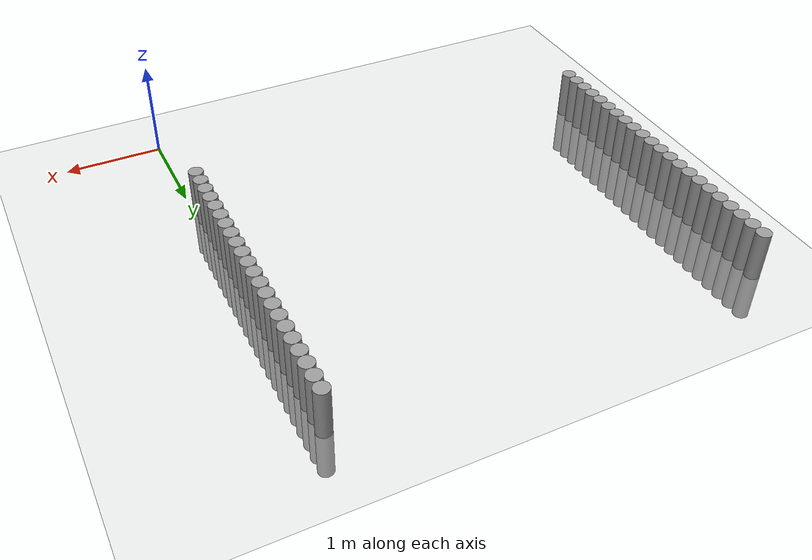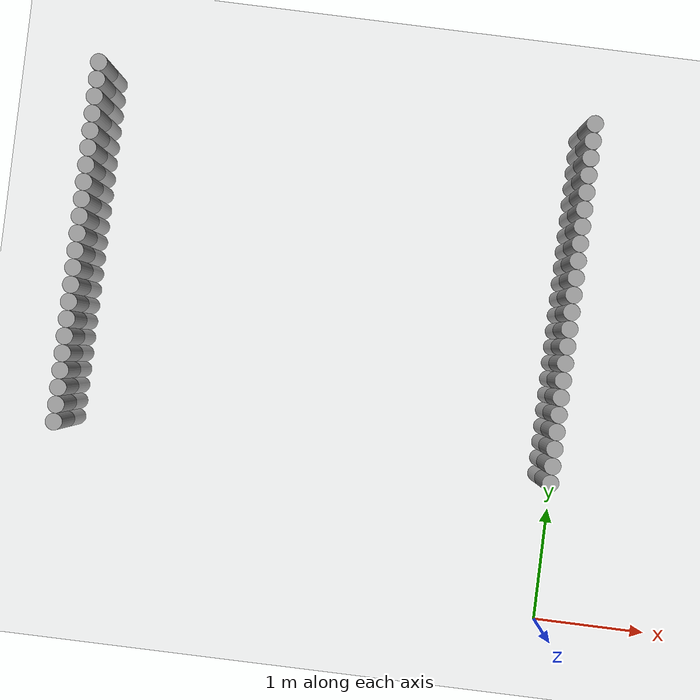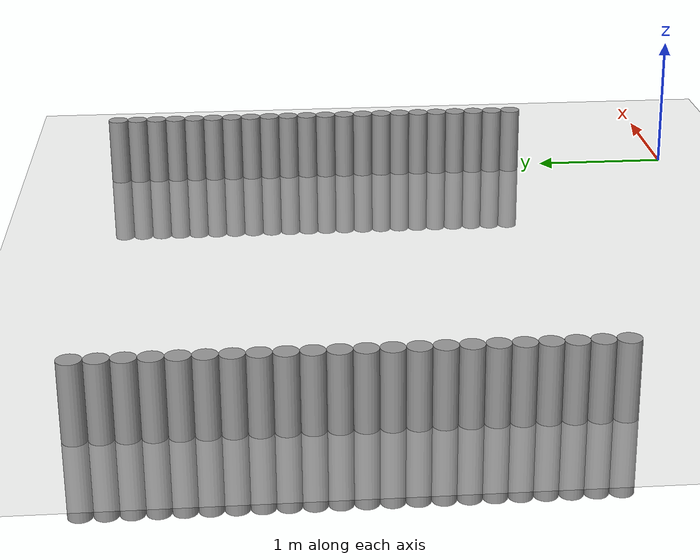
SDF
<sdf version="1.6">
 <world name="default">
  <model name="ground_plane">
   <static>1</static>
   <link name="link">
    <collision name="collision">
     <geometry><plane><normal>0 0 1</normal><size>100 100</size></plane></geometry>
     <surface><friction><ode><mu>100</mu><mu2>50</mu2></ode></friction></surface>
    </collision>
    <visual name="visual">
     <cast_shadows>0</cast_shadows>
     <geometry><plane><normal>0 0 1</normal><size>100 100</size></plane></geometry>
     <material>
      <script><uri>file://media/materials/scripts/gazebo.material</uri><name>Gazebo/Grey</name></script>
     </material>
    </visual>
   </link>
  </model>
  <model name="unit_cylinder_44">
   <pose>-0.075000 1.275000 0.000000 0.000000 0.000000 0.000000</pose>
   <link name="link">
    <inertial>
     <mass>1</mass>
     <inertia><ixx>0.145833</ixx><ixy>0</ixy><ixz>0</ixz><iyy>0.145833</iyy><iyz>0</iyz><izz>0.125</izz></inertia>
    </inertial>
    <collision name="collision">
     <geometry><cylinder><radius>0.075000</radius><length>1</length></cylinder></geometry>
    </collision>
    <visual name="visual">
     <geometry><cylinder><radius>0.075000</radius><length>1</length></cylinder></geometry>
     <material>
      <script><name>Gazebo/Grey</name><uri>file://media/materials/scripts/gazebo.material</uri></script>
     </material>
    </visual>
   </link>
  </model>
  <model name="unit_cylinder_45">
   <pose>-4.425000 1.275000 0.000000 0.000000 0.000000 0.000000</pose>
   <link name="link">
    <inertial>
     <mass>1</mass>
     <inertia><ixx>0.145833</ixx><ixy>0</ixy><ixz>0</ixz><iyy>0.145833</iyy><iyz>0</iyz><izz>0.125</izz></inertia>
    </inertial>
    <collision name="collision">
     <geometry><cylinder><radius>0.075000</radius><length>1</length></cylinder></geometry>
    </collision>
    <visual name="visual">
     <geometry><cylinder><radius>0.075000</radius><length>1</length></cylinder></geometry>
     <material>
      <script><name>Gazebo/Grey</name><uri>file://media/materials/scripts/gazebo.material</uri></script>
     </material>
    </visual>
   </link>
  </model>
  <model name="unit_cylinder_46">
   <pose>-0.075000 1.425000 0.000000 0.000000 0.000000 0.000000</pose>
   <link name="link">
    <inertial>
     <mass>1</mass>
     <inertia><ixx>0.145833</ixx><ixy>0</ixy><ixz>0</ixz><iyy>0.145833</iyy><iyz>0</iyz><izz>0.125</izz></inertia>
    </inertial>
    <collision name="collision">
     <geometry><cylinder><radius>0.075000</radius><length>1</length></cylinder></geometry>
    </collision>
    <visual name="visual">
     <geometry><cylinder><radius>0.075000</radius><length>1</length></cylinder></geometry>
     <material>
      <script><name>Gazebo/Grey</name><uri>file://media/materials/scripts/gazebo.material</uri></script>
     </material>
    </visual>
   </link>
  </model>
  <model name="unit_cylinder_47">
   <pose>-4.425000 1.425000 0.000000 0.000000 0.000000 0.000000</pose>
   <link name="link">
    <inertial>
     <mass>1</mass>
     <inertia><ixx>0.145833</ixx><ixy>0</ixy><ixz>0</ixz><iyy>0.145833</iyy><iyz>0</iyz><izz>0.125</izz></inertia>
    </inertial>
    <collision name="collision">
     <geometry><cylinder><radius>0.075000</radius><length>1</length></cylinder></geometry>
    </collision>
    <visual name="visual">
     <geometry><cylinder><radius>0.075000</radius><length>1</length></cylinder></geometry>
     <material>
      <script><name>Gazebo/Grey</name><uri>file://media/materials/scripts/gazebo.material</uri></script>
     </material>
    </visual>
   </link>
  </model>
  <model name="unit_cylinder_48">
   <pose>-0.075000 1.575000 0.000000 0.000000 0.000000 0.000000</pose>
   <link name="link">
    <inertial>
     <mass>1</mass>
     <inertia><ixx>0.145833</ixx><ixy>0</ixy><ixz>0</ixz><iyy>0.145833</iyy><iyz>0</iyz><izz>0.125</izz></inertia>
    </inertial>
    <collision name="collision">
     <geometry><cylinder><radius>0.075000</radius><length>1</length></cylinder></geometry>
    </collision>
    <visual name="visual">
     <geometry><cylinder><radius>0.075000</radius><length>1</length></cylinder></geometry>
     <material>
      <script><name>Gazebo/Grey</name><uri>file://media/materials/scripts/gazebo.material</uri></script>
     </material>
    </visual>
   </link>
  </model>
  <model name="unit_cylinder_49">
   <pose>-4.425000 1.575000 0.000000 0.000000 0.000000 0.000000</pose>
   <link name="link">
    <inertial>
     <mass>1</mass>
     <inertia><ixx>0.145833</ixx><ixy>0</ixy><ixz>0</ixz><iyy>0.145833</iyy><iyz>0</iyz><izz>0.125</izz></inertia>
    </inertial>
    <collision name="collision">
     <geometry><cylinder><radius>0.075000</radius><length>1</length></cylinder></geometry>
    </collision>
    <visual name="visual">
     <geometry><cylinder><radius>0.075000</radius><length>1</length></cylinder></geometry>
     <material>
      <script><name>Gazebo/Grey</name><uri>file://media/materials/scripts/gazebo.material</uri></script>
     </material>
    </visual>
   </link>
  </model>
  <model name="unit_cylinder_50">
   <pose>-0.075000 1.725000 0.000000 0.000000 0.000000 0.000000</pose>
   <link name="link">
    <inertial>
     <mass>1</mass>
     <inertia><ixx>0.145833</ixx><ixy>0</ixy><ixz>0</ixz><iyy>0.145833</iyy><iyz>0</iyz><izz>0.125</izz></inertia>
    </inertial>
    <collision name="collision">
     <geometry><cylinder><radius>0.075000</radius><length>1</length></cylinder></geometry>
    </collision>
    <visual name="visual">
     <geometry><cylinder><radius>0.075000</radius><length>1</length></cylinder></geometry>
     <material>
      <script><name>Gazebo/Grey</name><uri>file://media/materials/scripts/gazebo.material</uri></script>
     </material>
    </visual>
   </link>
  </model>
  <model name="unit_cylinder_51">
   <pose>-4.425000 1.725000 0.000000 0.000000 0.000000 0.000000</pose>
   <link name="link">
    <inertial>
     <mass>1</mass>
     <inertia><ixx>0.145833</ixx><ixy>0</ixy><ixz>0</ixz><iyy>0.145833</iyy><iyz>0</iyz><izz>0.125</izz></inertia>
    </inertial>
    <collision name="collision">
     <geometry><cylinder><radius>0.075000</radius><length>1</length></cylinder></geometry>
    </collision>
    <visual name="visual">
     <geometry><cylinder><radius>0.075000</radius><length>1</length></cylinder></geometry>
     <material>
      <script><name>Gazebo/Grey</name><uri>file://media/materials/scripts/gazebo.material</uri></script>
     </material>
    </visual>
   </link>
  </model>
  <model name="unit_cylinder_52">
   <pose>-0.075000 1.875000 0.000000 0.000000 0.000000 0.000000</pose>
   <link name="link">
    <inertial>
     <mass>1</mass>
     <inertia><ixx>0.145833</ixx><ixy>0</ixy><ixz>0</ixz><iyy>0.145833</iyy><iyz>0</iyz><izz>0.125</izz></inertia>
    </inertial>
    <collision name="collision">
     <geometry><cylinder><radius>0.075000</radius><length>1</length></cylinder></geometry>
    </collision>
    <visual name="visual">
     <geometry><cylinder><radius>0.075000</radius><length>1</length></cylinder></geometry>
     <material>
      <script><name>Gazebo/Grey</name><uri>file://media/materials/scripts/gazebo.material</uri></script>
     </material>
    </visual>
   </link>
  </model>
  <model name="unit_cylinder_53">
   <pose>-4.425000 1.875000 0.000000 0.000000 0.000000 0.000000</pose>
   <link name="link">
    <inertial>
     <mass>1</mass>
     <inertia><ixx>0.145833</ixx><ixy>0</ixy><ixz>0</ixz><iyy>0.145833</iyy><iyz>0</iyz><izz>0.125</izz></inertia>
    </inertial>
    <collision name="collision">
     <geometry><cylinder><radius>0.075000</radius><length>1</length></cylinder></geometry>
    </collision>
    <visual name="visual">
     <geometry><cylinder><radius>0.075000</radius><length>1</length></cylinder></geometry>
     <material>
      <script><name>Gazebo/Grey</name><uri>file://media/materials/scripts/gazebo.material</uri></script>
     </material>
    </visual>
   </link>
  </model>
  <model name="unit_cylinder_54">
   <pose>-0.075000 2.025000 0.000000 0.000000 0.000000 0.000000</pose>
   <link name="link">
    <inertial>
     <mass>1</mass>
     <inertia><ixx>0.145833</ixx><ixy>0</ixy><ixz>0</ixz><iyy>0.145833</iyy><iyz>0</iyz><izz>0.125</izz></inertia>
    </inertial>
    <collision name="collision">
     <geometry><cylinder><radius>0.075000</radius><length>1</length></cylinder></geometry>
    </collision>
    <visual name="visual">
     <geometry><cylinder><radius>0.075000</radius><length>1</length></cylinder></geometry>
     <material>
      <script><name>Gazebo/Grey</name><uri>file://media/materials/scripts/gazebo.material</uri></script>
     </material>
    </visual>
   </link>
  </model>
  <model name="unit_cylinder_55">
   <pose>-4.425000 2.025000 0.000000 0.000000 0.000000 0.000000</pose>
   <link name="link">
    <inertial>
     <mass>1</mass>
     <inertia><ixx>0.145833</ixx><ixy>0</ixy><ixz>0</ixz><iyy>0.145833</iyy><iyz>0</iyz><izz>0.125</izz></inertia>
    </inertial>
    <collision name="collision">
     <geometry><cylinder><radius>0.075000</radius><length>1</length></cylinder></geometry>
    </collision>
    <visual name="visual">
     <geometry><cylinder><radius>0.075000</radius><length>1</length></cylinder></geometry>
     <material>
      <script><name>Gazebo/Grey</name><uri>file://media/materials/scripts/gazebo.material</uri></script>
     </material>
    </visual>
   </link>
  </model>
  <model name="unit_cylinder_56">
   <pose>-0.075000 2.175000 0.000000 0.000000 0.000000 0.000000</pose>
   <link name="link">
    <inertial>
     <mass>1</mass>
     <inertia><ixx>0.145833</ixx><ixy>0</ixy><ixz>0</ixz><iyy>0.145833</iyy><iyz>0</iyz><izz>0.125</izz></inertia>
    </inertial>
    <collision name="collision">
     <geometry><cylinder><radius>0.075000</radius><length>1</length></cylinder></geometry>
    </collision>
    <visual name="visual">
     <geometry><cylinder><radius>0.075000</radius><length>1</length></cylinder></geometry>
     <material>
      <script><name>Gazebo/Grey</name><uri>file://media/materials/scripts/gazebo.material</uri></script>
     </material>
    </visual>
   </link>
  </model>
  <model name="unit_cylinder_57">
   <pose>-4.425000 2.175000 0.000000 0.000000 0.000000 0.000000</pose>
   <link name="link">
    <inertial>
     <mass>1</mass>
     <inertia><ixx>0.145833</ixx><ixy>0</ixy><ixz>0</ixz><iyy>0.145833</iyy><iyz>0</iyz><izz>0.125</izz></inertia>
    </inertial>
    <collision name="collision">
     <geometry><cylinder><radius>0.075000</radius><length>1</length></cylinder></geometry>
    </collision>
    <visual name="visual">
     <geometry><cylinder><radius>0.075000</radius><length>1</length></cylinder></geometry>
     <material>
      <script><name>Gazebo/Grey</name><uri>file://media/materials/scripts/gazebo.material</uri></script>
     </material>
    </visual>
   </link>
  </model>
  <model name="unit_cylinder_58">
   <pose>-0.075000 2.325000 0.000000 0.000000 0.000000 0.000000</pose>
   <link name="link">
    <inertial>
     <mass>1</mass>
     <inertia><ixx>0.145833</ixx><ixy>0</ixy><ixz>0</ixz><iyy>0.145833</iyy><iyz>0</iyz><izz>0.125</izz></inertia>
    </inertial>
    <collision name="collision">
     <geometry><cylinder><radius>0.075000</radius><length>1</length></cylinder></geometry>
    </collision>
    <visual name="visual">
     <geometry><cylinder><radius>0.075000</radius><length>1</length></cylinder></geometry>
     <material>
      <script><name>Gazebo/Grey</name><uri>file://media/materials/scripts/gazebo.material</uri></script>
     </material>
    </visual>
   </link>
  </model>
  <model name="unit_cylinder_59">
   <pose>-4.425000 2.325000 0.000000 0.000000 0.000000 0.000000</pose>
   <link name="link">
    <inertial>
     <mass>1</mass>
     <inertia><ixx>0.145833</ixx><ixy>0</ixy><ixz>0</ixz><iyy>0.145833</iyy><iyz>0</iyz><izz>0.125</izz></inertia>
    </inertial>
    <collision name="collision">
     <geometry><cylinder><radius>0.075000</radius><length>1</length></cylinder></geometry>
    </collision>
    <visual name="visual">
     <geometry><cylinder><radius>0.075000</radius><length>1</length></cylinder></geometry>
     <material>
      <script><name>Gazebo/Grey</name><uri>file://media/materials/scripts/gazebo.material</uri></script>
     </material>
    </visual>
   </link>
  </model>
  <model name="unit_cylinder_60">
   <pose>-0.075000 2.475000 0.000000 0.000000 0.000000 0.000000</pose>
   <link name="link">
    <inertial>
     <mass>1</mass>
     <inertia><ixx>0.145833</ixx><ixy>0</ixy><ixz>0</ixz><iyy>0.145833</iyy><iyz>0</iyz><izz>0.125</izz></inertia>
    </inertial>
    <collision name="collision">
     <geometry><cylinder><radius>0.075000</radius><length>1</length></cylinder></geometry>
    </collision>
    <visual name="visual">
     <geometry><cylinder><radius>0.075000</radius><length>1</length></cylinder></geometry>
     <material>
      <script><name>Gazebo/Grey</name><uri>file://media/materials/scripts/gazebo.material</uri></script>
     </material>
    </visual>
   </link>
  </model>
  <model name="unit_cylinder_61">
   <pose>-4.425000 2.475000 0.000000 0.000000 0.000000 0.000000</pose>
   <link name="link">
    <inertial>
     <mass>1</mass>
     <inertia><ixx>0.145833</ixx><ixy>0</ixy><ixz>0</ixz><iyy>0.145833</iyy><iyz>0</iyz><izz>0.125</izz></inertia>
    </inertial>
    <collision name="collision">
     <geometry><cylinder><radius>0.075000</radius><length>1</length></cylinder></geometry>
    </collision>
    <visual name="visual">
     <geometry><cylinder><radius>0.075000</radius><length>1</length></cylinder></geometry>
     <material>
      <script><name>Gazebo/Grey</name><uri>file://media/materials/scripts/gazebo.material</uri></script>
     </material>
    </visual>
   </link>
  </model>
  <model name="unit_cylinder_62">
   <pose>-0.075000 2.625000 0.000000 0.000000 0.000000 0.000000</pose>
   <link name="link">
    <inertial>
     <mass>1</mass>
     <inertia><ixx>0.145833</ixx><ixy>0</ixy><ixz>0</ixz><iyy>0.145833</iyy><iyz>0</iyz><izz>0.125</izz></inertia>
    </inertial>
    <collision name="collision">
     <geometry><cylinder><radius>0.075000</radius><length>1</length></cylinder></geometry>
    </collision>
    <visual name="visual">
     <geometry><cylinder><radius>0.075000</radius><length>1</length></cylinder></geometry>
     <material>
      <script><name>Gazebo/Grey</name><uri>file://media/materials/scripts/gazebo.material</uri></script>
     </material>
    </visual>
   </link>
  </model>
  <model name="unit_cylinder_63">
   <pose>-4.425000 2.625000 0.000000 0.000000 0.000000 0.000000</pose>
   <link name="link">
    <inertial>
     <mass>1</mass>
     <inertia><ixx>0.145833</ixx><ixy>0</ixy><ixz>0</ixz><iyy>0.145833</iyy><iyz>0</iyz><izz>0.125</izz></inertia>
    </inertial>
    <collision name="collision">
     <geometry><cylinder><radius>0.075000</radius><length>1</length></cylinder></geometry>
    </collision>
    <visual name="visual">
     <geometry><cylinder><radius>0.075000</radius><length>1</length></cylinder></geometry>
     <material>
      <script><name>Gazebo/Grey</name><uri>file://media/materials/scripts/gazebo.material</uri></script>
     </material>
    </visual>
   </link>
  </model>
  <model name="unit_cylinder_64">
   <pose>-0.075000 2.775000 0.000000 0.000000 0.000000 0.000000</pose>
   <link name="link">
    <inertial>
     <mass>1</mass>
     <inertia><ixx>0.145833</ixx><ixy>0</ixy><ixz>0</ixz><iyy>0.145833</iyy><iyz>0</iyz><izz>0.125</izz></inertia>
    </inertial>
    <collision name="collision">
     <geometry><cylinder><radius>0.075000</radius><length>1</length></cylinder></geometry>
    </collision>
    <visual name="visual">
     <geometry><cylinder><radius>0.075000</radius><length>1</length></cylinder></geometry>
     <material>
      <script><name>Gazebo/Grey</name><uri>file://media/materials/scripts/gazebo.material</uri></script>
     </material>
    </visual>
   </link>
  </model>
  <model name="unit_cylinder_65">
   <pose>-4.425000 2.775000 0.000000 0.000000 0.000000 0.000000</pose>
   <link name="link">
    <inertial>
     <mass>1</mass>
     <inertia><ixx>0.145833</ixx><ixy>0</ixy><ixz>0</ixz><iyy>0.145833</iyy><iyz>0</iyz><izz>0.125</izz></inertia>
    </inertial>
    <collision name="collision">
     <geometry><cylinder><radius>0.075000</radius><length>1</length></cylinder></geometry>
    </collision>
    <visual name="visual">
     <geometry><cylinder><radius>0.075000</radius><length>1</length></cylinder></geometry>
     <material>
      <script><name>Gazebo/Grey</name><uri>file://media/materials/scripts/gazebo.material</uri></script>
     </material>
    </visual>
   </link>
  </model>
  <model name="unit_cylinder_66">
   <pose>-0.075000 2.925000 0.000000 0.000000 0.000000 0.000000</pose>
   <link name="link">
    <inertial>
     <mass>1</mass>
     <inertia><ixx>0.145833</ixx><ixy>0</ixy><ixz>0</ixz><iyy>0.145833</iyy><iyz>0</iyz><izz>0.125</izz></inertia>
    </inertial>
    <collision name="collision">
     <geometry><cylinder><radius>0.075000</radius><length>1</length></cylinder></geometry>
    </collision>
    <visual name="visual">
     <geometry><cylinder><radius>0.075000</radius><length>1</length></cylinder></geometry>
     <material>
      <script><name>Gazebo/Grey</name><uri>file://media/materials/scripts/gazebo.material</uri></script>
     </material>
    </visual>
   </link>
  </model>
  <model name="unit_cylinder_67">
   <pose>-4.425000 2.925000 0.000000 0.000000 0.000000 0.000000</pose>
   <link name="link">
    <inertial>
     <mass>1</mass>
     <inertia><ixx>0.145833</ixx><ixy>0</ixy><ixz>0</ixz><iyy>0.145833</iyy><iyz>0</iyz><izz>0.125</izz></inertia>
    </inertial>
    <collision name="collision">
     <geometry><cylinder><radius>0.075000</radius><length>1</length></cylinder></geometry>
    </collision>
    <visual name="visual">
     <geometry><cylinder><radius>0.075000</radius><length>1</length></cylinder></geometry>
     <material>
      <script><name>Gazebo/Grey</name><uri>file://media/materials/scripts/gazebo.material</uri></script>
     </material>
    </visual>
   </link>
  </model>
  <model name="unit_cylinder_68">
   <pose>-0.075000 3.075000 0.000000 0.000000 0.000000 0.000000</pose>
   <link name="link">
    <inertial>
     <mass>1</mass>
     <inertia><ixx>0.145833</ixx><ixy>0</ixy><ixz>0</ixz><iyy>0.145833</iyy><iyz>0</iyz><izz>0.125</izz></inertia>
    </inertial>
    <collision name="collision">
     <geometry><cylinder><radius>0.075000</radius><length>1</length></cylinder></geometry>
    </collision>
    <visual name="visual">
     <geometry><cylinder><radius>0.075000</radius><length>1</length></cylinder></geometry>
     <material>
      <script><name>Gazebo/Grey</name><uri>file://media/materials/scripts/gazebo.material</uri></script>
     </material>
    </visual>
   </link>
  </model>
  <model name="unit_cylinder_69">
   <pose>-4.425000 3.075000 0.000000 0.000000 0.000000 0.000000</pose>
   <link name="link">
    <inertial>
     <mass>1</mass>
     <inertia><ixx>0.145833</ixx><ixy>0</ixy><ixz>0</ixz><iyy>0.145833</iyy><iyz>0</iyz><izz>0.125</izz></inertia>
    </inertial>
    <collision name="collision">
     <geometry><cylinder><radius>0.075000</radius><length>1</length></cylinder></geometry>
    </collision>
    <visual name="visual">
     <geometry><cylinder><radius>0.075000</radius><length>1</length></cylinder></geometry>
     <material>
      <script><name>Gazebo/Grey</name><uri>file://media/materials/scripts/gazebo.material</uri></script>
     </material>
    </visual>
   </link>
  </model>
  <model name="unit_cylinder_70">
   <pose>-0.075000 3.225000 0.000000 0.000000 0.000000 0.000000</pose>
   <link name="link">
    <inertial>
     <mass>1</mass>
     <inertia><ixx>0.145833</ixx><ixy>0</ixy><ixz>0</ixz><iyy>0.145833</iyy><iyz>0</iyz><izz>0.125</izz></inertia>
    </inertial>
    <collision name="collision">
     <geometry><cylinder><radius>0.075000</radius><length>1</length></cylinder></geometry>
    </collision>
    <visual name="visual">
     <geometry><cylinder><radius>0.075000</radius><length>1</length></cylinder></geometry>
     <material>
      <script><name>Gazebo/Grey</name><uri>file://media/materials/scripts/gazebo.material</uri></script>
     </material>
    </visual>
   </link>
  </model>
  <model name="unit_cylinder_71">
   <pose>-4.425000 3.225000 0.000000 0.000000 0.000000 0.000000</pose>
   <link name="link">
    <inertial>
     <mass>1</mass>
     <inertia><ixx>0.145833</ixx><ixy>0</ixy><ixz>0</ixz><iyy>0.145833</iyy><iyz>0</iyz><izz>0.125</izz></inertia>
    </inertial>
    <collision name="collision">
     <geometry><cylinder><radius>0.075000</radius><length>1</length></cylinder></geometry>
    </collision>
    <visual name="visual">
     <geometry><cylinder><radius>0.075000</radius><length>1</length></cylinder></geometry>
     <material>
      <script><name>Gazebo/Grey</name><uri>file://media/materials/scripts/gazebo.material</uri></script>
     </material>
    </visual>
   </link>
  </model>
  <model name="unit_cylinder_72">
   <pose>-0.075000 3.375000 0.000000 0.000000 0.000000 0.000000</pose>
   <link name="link">
    <inertial>
     <mass>1</mass>
     <inertia><ixx>0.145833</ixx><ixy>0</ixy><ixz>0</ixz><iyy>0.145833</iyy><iyz>0</iyz><izz>0.125</izz></inertia>
    </inertial>
    <collision name="collision">
     <geometry><cylinder><radius>0.075000</radius><length>1</length></cylinder></geometry>
    </collision>
    <visual name="visual">
     <geometry><cylinder><radius>0.075000</radius><length>1</length></cylinder></geometry>
     <material>
      <script><name>Gazebo/Grey</name><uri>file://media/materials/scripts/gazebo.material</uri></script>
     </material>
    </visual>
   </link>
  </model>
  <model name="unit_cylinder_73">
   <pose>-4.425000 3.375000 0.000000 0.000000 0.000000 0.000000</pose>
   <link name="link">
    <inertial>
     <mass>1</mass>
     <inertia><ixx>0.145833</ixx><ixy>0</ixy><ixz>0</ixz><iyy>0.145833</iyy><iyz>0</iyz><izz>0.125</izz></inertia>
    </inertial>
    <collision name="collision">
     <geometry><cylinder><radius>0.075000</radius><length>1</length></cylinder></geometry>
    </collision>
    <visual name="visual">
     <geometry><cylinder><radius>0.075000</radius><length>1</length></cylinder></geometry>
     <material>
      <script><name>Gazebo/Grey</name><uri>file://media/materials/scripts/gazebo.material</uri></script>
     </material>
    </visual>
   </link>
  </model>
  <model name="unit_cylinder_74">
   <pose>-0.075000 3.525000 0.000000 0.000000 0.000000 0.000000</pose>
   <link name="link">
    <inertial>
     <mass>1</mass>
     <inertia><ixx>0.145833</ixx><ixy>0</ixy><ixz>0</ixz><iyy>0.145833</iyy><iyz>0</iyz><izz>0.125</izz></inertia>
    </inertial>
    <collision name="collision">
     <geometry><cylinder><radius>0.075000</radius><length>1</length></cylinder></geometry>
    </collision>
    <visual name="visual">
     <geometry><cylinder><radius>0.075000</radius><length>1</length></cylinder></geometry>
     <material>
      <script><name>Gazebo/Grey</name><uri>file://media/materials/scripts/gazebo.material</uri></script>
     </material>
    </visual>
   </link>
  </model>
  <model name="unit_cylinder_75">
   <pose>-4.425000 3.525000 0.000000 0.000000 0.000000 0.000000</pose>
   <link name="link">
    <inertial>
     <mass>1</mass>
     <inertia><ixx>0.145833</ixx><ixy>0</ixy><ixz>0</ixz><iyy>0.145833</iyy><iyz>0</iyz><izz>0.125</izz></inertia>
    </inertial>
    <collision name="collision">
     <geometry><cylinder><radius>0.075000</radius><length>1</length></cylinder></geometry>
    </collision>
    <visual name="visual">
     <geometry><cylinder><radius>0.075000</radius><length>1</length></cylinder></geometry>
     <material>
      <script><name>Gazebo/Grey</name><uri>file://media/materials/scripts/gazebo.material</uri></script>
     </material>
    </visual>
   </link>
  </model>
  <model name="unit_cylinder_76">
   <pose>-0.075000 3.675000 0.000000 0.000000 0.000000 0.000000</pose>
   <link name="link">
    <inertial>
     <mass>1</mass>
     <inertia><ixx>0.145833</ixx><ixy>0</ixy><ixz>0</ixz><iyy>0.145833</iyy><iyz>0</iyz><izz>0.125</izz></inertia>
    </inertial>
    <collision name="collision">
     <geometry><cylinder><radius>0.075000</radius><length>1</length></cylinder></geometry>
    </collision>
    <visual name="visual">
     <geometry><cylinder><radius>0.075000</radius><length>1</length></cylinder></geometry>
     <material>
      <script><name>Gazebo/Grey</name><uri>file://media/materials/scripts/gazebo.material</uri></script>
     </material>
    </visual>
   </link>
  </model>
  <model name="unit_cylinder_77">
   <pose>-4.425000 3.675000 0.000000 0.000000 0.000000 0.000000</pose>
   <link name="link">
    <inertial>
     <mass>1</mass>
     <inertia><ixx>0.145833</ixx><ixy>0</ixy><ixz>0</ixz><iyy>0.145833</iyy><iyz>0</iyz><izz>0.125</izz></inertia>
    </inertial>
    <collision name="collision">
     <geometry><cylinder><radius>0.075000</radius><length>1</length></cylinder></geometry>
    </collision>
    <visual name="visual">
     <geometry><cylinder><radius>0.075000</radius><length>1</length></cylinder></geometry>
     <material>
      <script><name>Gazebo/Grey</name><uri>file://media/materials/scripts/gazebo.material</uri></script>
     </material>
    </visual>
   </link>
  </model>
  <model name="unit_cylinder_78">
   <pose>-0.075000 3.825000 0.000000 0.000000 0.000000 0.000000</pose>
   <link name="link">
    <inertial>
     <mass>1</mass>
     <inertia><ixx>0.145833</ixx><ixy>0</ixy><ixz>0</ixz><iyy>0.145833</iyy><iyz>0</iyz><izz>0.125</izz></inertia>
    </inertial>
    <collision name="collision">
     <geometry><cylinder><radius>0.075000</radius><length>1</length></cylinder></geometry>
    </collision>
    <visual name="visual">
     <geometry><cylinder><radius>0.075000</radius><length>1</length></cylinder></geometry>
     <material>
      <script><name>Gazebo/Grey</name><uri>file://media/materials/scripts/gazebo.material</uri></script>
     </material>
    </visual>
   </link>
  </model>
  <model name="unit_cylinder_79">
   <pose>-4.425000 3.825000 0.000000 0.000000 0.000000 0.000000</pose>
   <link name="link">
    <inertial>
     <mass>1</mass>
     <inertia><ixx>0.145833</ixx><ixy>0</ixy><ixz>0</ixz><iyy>0.145833</iyy><iyz>0</iyz><izz>0.125</izz></inertia>
    </inertial>
    <collision name="collision">
     <geometry><cylinder><radius>0.075000</radius><length>1</length></cylinder></geometry>
    </collision>
    <visual name="visual">
     <geometry><cylinder><radius>0.075000</radius><length>1</length></cylinder></geometry>
     <material>
      <script><name>Gazebo/Grey</name><uri>file://media/materials/scripts/gazebo.material</uri></script>
     </material>
    </visual>
   </link>
  </model>
  <model name="unit_cylinder_80">
   <pose>-0.075000 3.975000 0.000000 0.000000 0.000000 0.000000</pose>
   <link name="link">
    <inertial>
     <mass>1</mass>
     <inertia><ixx>0.145833</ixx><ixy>0</ixy><ixz>0</ixz><iyy>0.145833</iyy><iyz>0</iyz><izz>0.125</izz></inertia>
    </inertial>
    <collision name="collision">
     <geometry><cylinder><radius>0.075000</radius><length>1</length></cylinder></geometry>
    </collision>
    <visual name="visual">
     <geometry><cylinder><radius>0.075000</radius><length>1</length></cylinder></geometry>
     <material>
      <script><name>Gazebo/Grey</name><uri>file://media/materials/scripts/gazebo.material</uri></script>
     </material>
    </visual>
   </link>
  </model>
  <model name="unit_cylinder_81">
   <pose>-4.425000 3.975000 0.000000 0.000000 0.000000 0.000000</pose>
   <link name="link">
    <inertial>
     <mass>1</mass>
     <inertia><ixx>0.145833</ixx><ixy>0</ixy><ixz>0</ixz><iyy>0.145833</iyy><iyz>0</iyz><izz>0.125</izz></inertia>
    </inertial>
    <collision name="collision">
     <geometry><cylinder><radius>0.075000</radius><length>1</length></cylinder></geometry>
    </collision>
    <visual name="visual">
     <geometry><cylinder><radius>0.075000</radius><length>1</length></cylinder></geometry>
     <material>
      <script><name>Gazebo/Grey</name><uri>file://media/materials/scripts/gazebo.material</uri></script>
     </material>
    </visual>
   </link>
  </model>
  <model name="unit_cylinder_82">
   <pose>-0.075000 4.125000 0.000000 0.000000 0.000000 0.000000</pose>
   <link name="link">
    <inertial>
     <mass>1</mass>
     <inertia><ixx>0.145833</ixx><ixy>0</ixy><ixz>0</ixz><iyy>0.145833</iyy><iyz>0</iyz><izz>0.125</izz></inertia>
    </inertial>
    <collision name="collision">
     <geometry><cylinder><radius>0.075000</radius><length>1</length></cylinder></geometry>
    </collision>
    <visual name="visual">
     <geometry><cylinder><radius>0.075000</radius><length>1</length></cylinder></geometry>
     <material>
      <script><name>Gazebo/Grey</name><uri>file://media/materials/scripts/gazebo.material</uri></script>
     </material>
    </visual>
   </link>
  </model>
  <model name="unit_cylinder_83">
   <pose>-4.425000 4.125000 0.000000 0.000000 0.000000 0.000000</pose>
   <link name="link">
    <inertial>
     <mass>1</mass>
     <inertia><ixx>0.145833</ixx><ixy>0</ixy><ixz>0</ixz><iyy>0.145833</iyy><iyz>0</iyz><izz>0.125</izz></inertia>
    </inertial>
    <collision name="collision">
     <geometry><cylinder><radius>0.075000</radius><length>1</length></cylinder></geometry>
    </collision>
    <visual name="visual">
     <geometry><cylinder><radius>0.075000</radius><length>1</length></cylinder></geometry>
     <material>
      <script><name>Gazebo/Grey</name><uri>file://media/materials/scripts/gazebo.material</uri></script>
     </material>
    </visual>
   </link>
  </model>
  <model name="unit_cylinder_84">
   <pose>-0.075000 4.275000 0.000000 0.000000 0.000000 0.000000</pose>
   <link name="link">
    <inertial>
     <mass>1</mass>
     <inertia><ixx>0.145833</ixx><ixy>0</ixy><ixz>0</ixz><iyy>0.145833</iyy><iyz>0</iyz><izz>0.125</izz></inertia>
    </inertial>
    <collision name="collision">
     <geometry><cylinder><radius>0.075000</radius><length>1</length></cylinder></geometry>
    </collision>
    <visual name="visual">
     <geometry><cylinder><radius>0.075000</radius><length>1</length></cylinder></geometry>
     <material>
      <script><name>Gazebo/Grey</name><uri>file://media/materials/scripts/gazebo.material</uri></script>
     </material>
    </visual>
   </link>
  </model>
  <model name="unit_cylinder_85">
   <pose>-4.425000 4.275000 0.000000 0.000000 0.000000 0.000000</pose>
   <link name="link">
    <inertial>
     <mass>1</mass>
     <inertia><ixx>0.145833</ixx><ixy>0</ixy><ixz>0</ixz><iyy>0.145833</iyy><iyz>0</iyz><izz>0.125</izz></inertia>
    </inertial>
    <collision name="collision">
     <geometry><cylinder><radius>0.075000</radius><length>1</length></cylinder></geometry>
    </collision>
    <visual name="visual">
     <geometry><cylinder><radius>0.075000</radius><length>1</length></cylinder></geometry>
     <material>
      <script><name>Gazebo/Grey</name><uri>file://media/materials/scripts/gazebo.material</uri></script>
     </material>
    </visual>
   </link>
  </model>
  <model name="unit_cylinder_86">
   <pose>-0.075000 4.425000 0.000000 0.000000 0.000000 0.000000</pose>
   <link name="link">
    <inertial>
     <mass>1</mass>
     <inertia><ixx>0.145833</ixx><ixy>0</ixy><ixz>0</ixz><iyy>0.145833</iyy><iyz>0</iyz><izz>0.125</izz></inertia>
    </inertial>
    <collision name="collision">
     <geometry><cylinder><radius>0.075000</radius><length>1</length></cylinder></geometry>
    </collision>
    <visual name="visual">
     <geometry><cylinder><radius>0.075000</radius><length>1</length></cylinder></geometry>
     <material>
      <script><name>Gazebo/Grey</name><uri>file://media/materials/scripts/gazebo.material</uri></script>
     </material>
    </visual>
   </link>
  </model>
  <model name="unit_cylinder_87">
   <pose>-4.425000 4.425000 0.000000 0.000000 0.000000 0.000000</pose>
   <link name="link">
    <inertial>
     <mass>1</mass>
     <inertia><ixx>0.145833</ixx><ixy>0</ixy><ixz>0</ixz><iyy>0.145833</iyy><iyz>0</iyz><izz>0.125</izz></inertia>
    </inertial>
    <collision name="collision">
     <geometry><cylinder><radius>0.075000</radius><length>1</length></cylinder></geometry>
    </collision>
    <visual name="visual">
     <geometry><cylinder><radius>0.075000</radius><length>1</length></cylinder></geometry>
     <material>
      <script><name>Gazebo/Grey</name><uri>file://media/materials/scripts/gazebo.material</uri></script>
     </material>
    </visual>
   </link>
  </model>
 </world>
</sdf>
